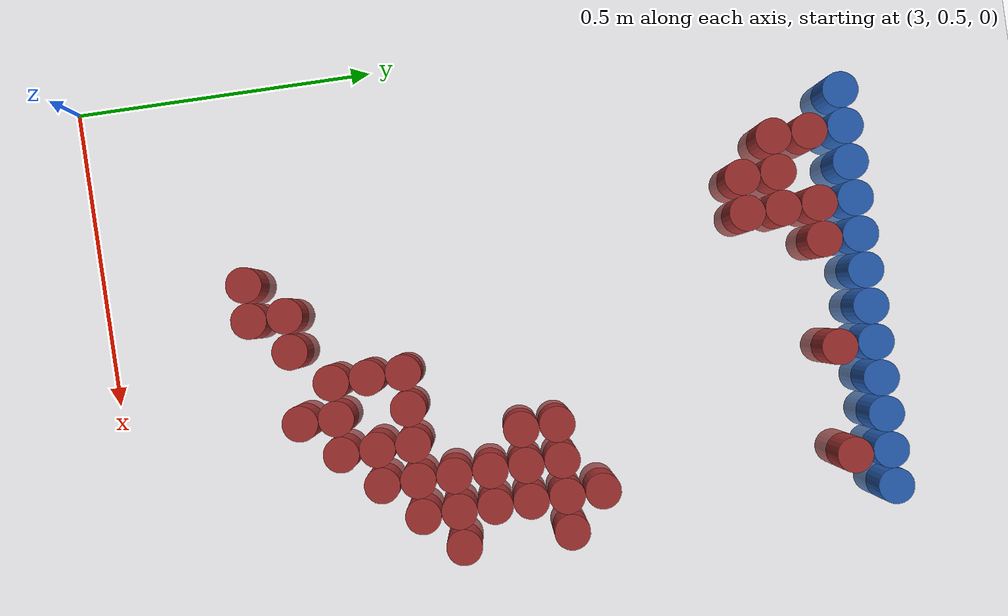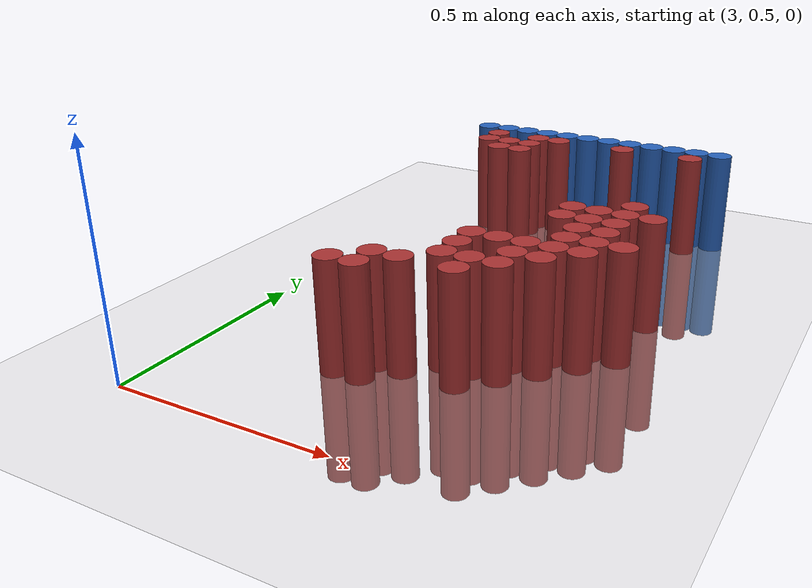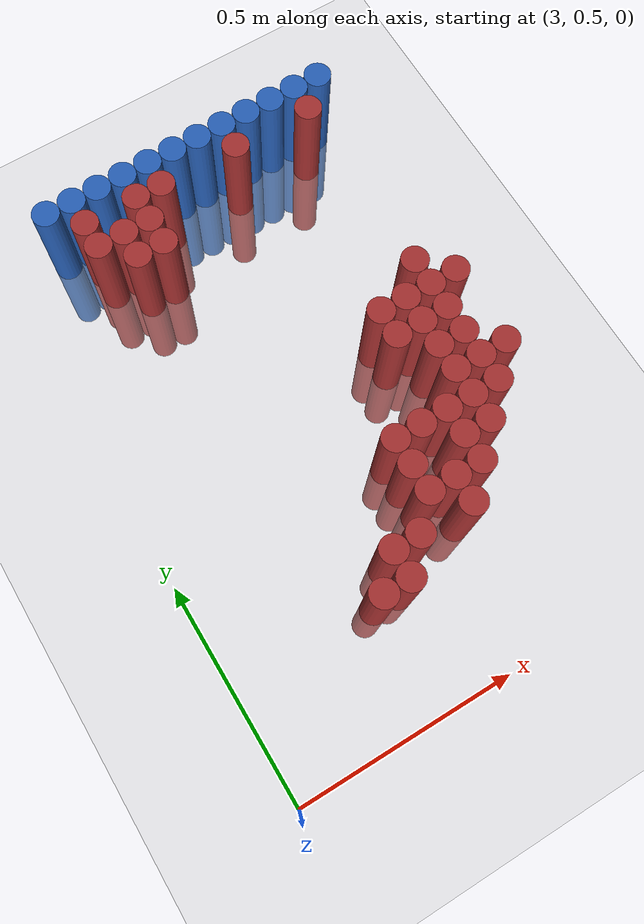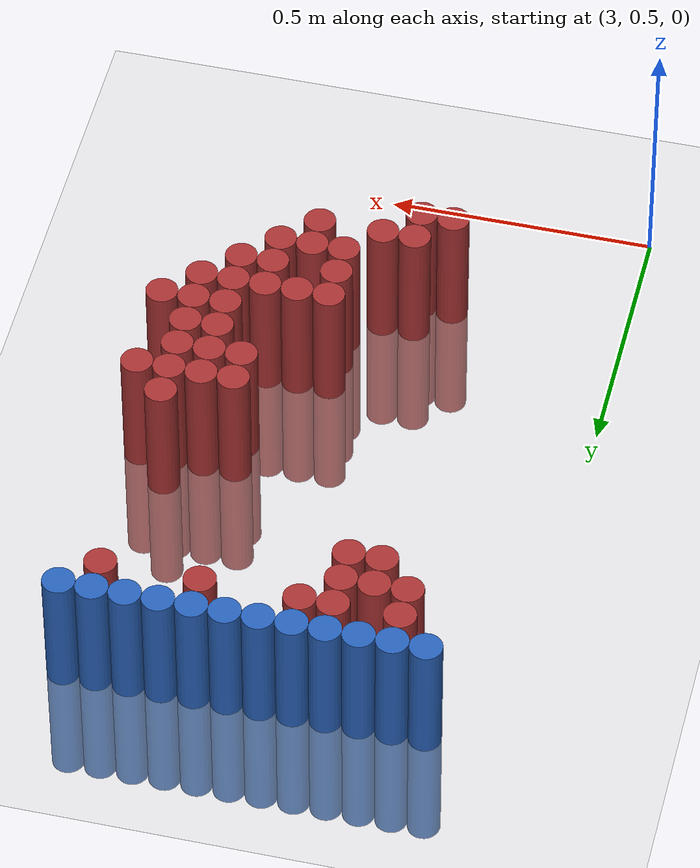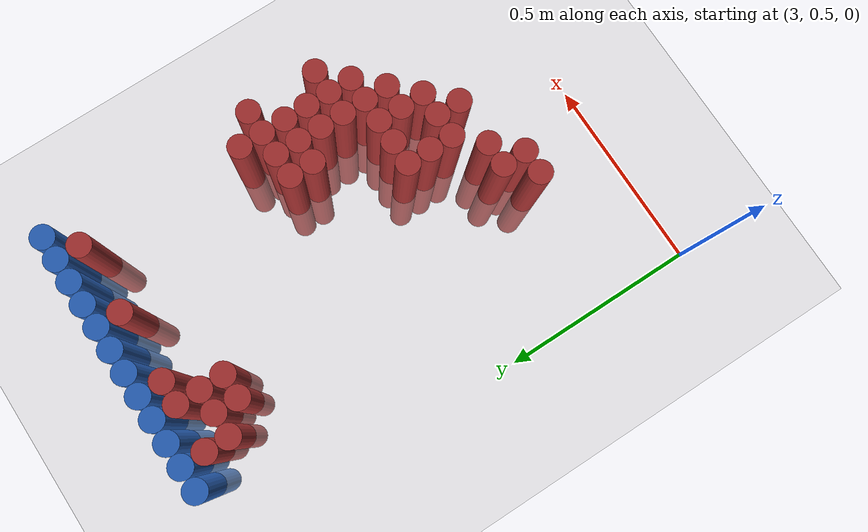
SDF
<sdf version="1.6">
 <world name="default">
  <model name="ground_plane">
   <static>1</static>
   <link name="link">
    <collision name="collision">
     <geometry><plane><normal>0 0 1</normal><size>100 100</size></plane></geometry>
     <surface><friction><ode><mu>100</mu><mu2>50</mu2></ode></friction></surface>
    </collision>
    <visual name="visual">
     <cast_shadows>0</cast_shadows>
     <geometry><plane><normal>0 0 1</normal><size>100 100</size></plane></geometry>
     <material>
      <script><uri>file://media/materials/scripts/gazebo.material</uri><name>Gazebo/Grey</name></script>
     </material>
    </visual>
   </link>
  </model>
  <model name="unit_cylinder_113">
   <static>1</static>
   <pose>3.150000 1.770000 0.000000 0.000000 0.000000 0.000000</pose>
   <link name="link">
    <inertial>
     <mass>1</mass>
     <inertia><ixx>0.145833</ixx><ixy>0</ixy><ixz>0</ixz><iyy>0.145833</iyy><iyz>0</iyz><izz>0.125</izz></inertia>
    </inertial>
    <collision name="collision">
     <geometry><cylinder><radius>0.030000</radius><length>0.5</length></cylinder></geometry>
    </collision>
    <visual name="visual">
     <geometry><cylinder><radius>0.030000</radius><length>0.5</length></cylinder></geometry>
     <material>
      <ambient>0.152000 0.379000 0.720000 1</ambient>
      <diffuse>0.152000 0.379000 0.720000 1</diffuse>
     </material>
     <material>
      <script><name>Gazebo/Grey</name><uri>file://media/materials/scripts/gazebo.material</uri></script>
     </material>
    </visual>
   </link>
  </model>
  <model name="unit_cylinder_114">
   <static>1</static>
   <pose>3.210000 1.770000 0.000000 0.000000 0.000000 0.000000</pose>
   <link name="link">
    <inertial>
     <mass>1</mass>
     <inertia><ixx>0.145833</ixx><ixy>0</ixy><ixz>0</ixz><iyy>0.145833</iyy><iyz>0</iyz><izz>0.125</izz></inertia>
    </inertial>
    <collision name="collision">
     <geometry><cylinder><radius>0.030000</radius><length>0.5</length></cylinder></geometry>
    </collision>
    <visual name="visual">
     <geometry><cylinder><radius>0.030000</radius><length>0.5</length></cylinder></geometry>
     <material>
      <ambient>0.152000 0.379000 0.720000 1</ambient>
      <diffuse>0.152000 0.379000 0.720000 1</diffuse>
     </material>
     <material>
      <script><name>Gazebo/Grey</name><uri>file://media/materials/scripts/gazebo.material</uri></script>
     </material>
    </visual>
   </link>
  </model>
  <model name="unit_cylinder_115">
   <static>1</static>
   <pose>3.270000 1.770000 0.000000 0.000000 0.000000 0.000000</pose>
   <link name="link">
    <inertial>
     <mass>1</mass>
     <inertia><ixx>0.145833</ixx><ixy>0</ixy><ixz>0</ixz><iyy>0.145833</iyy><iyz>0</iyz><izz>0.125</izz></inertia>
    </inertial>
    <collision name="collision">
     <geometry><cylinder><radius>0.030000</radius><length>0.5</length></cylinder></geometry>
    </collision>
    <visual name="visual">
     <geometry><cylinder><radius>0.030000</radius><length>0.5</length></cylinder></geometry>
     <material>
      <ambient>0.152000 0.379000 0.720000 1</ambient>
      <diffuse>0.152000 0.379000 0.720000 1</diffuse>
     </material>
     <material>
      <script><name>Gazebo/Grey</name><uri>file://media/materials/scripts/gazebo.material</uri></script>
     </material>
    </visual>
   </link>
  </model>
  <model name="unit_cylinder_116">
   <static>1</static>
   <pose>3.330000 1.770000 0.000000 0.000000 0.000000 0.000000</pose>
   <link name="link">
    <inertial>
     <mass>1</mass>
     <inertia><ixx>0.145833</ixx><ixy>0</ixy><ixz>0</ixz><iyy>0.145833</iyy><iyz>0</iyz><izz>0.125</izz></inertia>
    </inertial>
    <collision name="collision">
     <geometry><cylinder><radius>0.030000</radius><length>0.5</length></cylinder></geometry>
    </collision>
    <visual name="visual">
     <geometry><cylinder><radius>0.030000</radius><length>0.5</length></cylinder></geometry>
     <material>
      <ambient>0.152000 0.379000 0.720000 1</ambient>
      <diffuse>0.152000 0.379000 0.720000 1</diffuse>
     </material>
     <material>
      <script><name>Gazebo/Grey</name><uri>file://media/materials/scripts/gazebo.material</uri></script>
     </material>
    </visual>
   </link>
  </model>
  <model name="unit_cylinder_117">
   <static>1</static>
   <pose>3.390000 1.770000 0.000000 0.000000 0.000000 0.000000</pose>
   <link name="link">
    <inertial>
     <mass>1</mass>
     <inertia><ixx>0.145833</ixx><ixy>0</ixy><ixz>0</ixz><iyy>0.145833</iyy><iyz>0</iyz><izz>0.125</izz></inertia>
    </inertial>
    <collision name="collision">
     <geometry><cylinder><radius>0.030000</radius><length>0.5</length></cylinder></geometry>
    </collision>
    <visual name="visual">
     <geometry><cylinder><radius>0.030000</radius><length>0.5</length></cylinder></geometry>
     <material>
      <ambient>0.152000 0.379000 0.720000 1</ambient>
      <diffuse>0.152000 0.379000 0.720000 1</diffuse>
     </material>
     <material>
      <script><name>Gazebo/Grey</name><uri>file://media/materials/scripts/gazebo.material</uri></script>
     </material>
    </visual>
   </link>
  </model>
  <model name="unit_cylinder_118">
   <static>1</static>
   <pose>3.450000 1.770000 0.000000 0.000000 0.000000 0.000000</pose>
   <link name="link">
    <inertial>
     <mass>1</mass>
     <inertia><ixx>0.145833</ixx><ixy>0</ixy><ixz>0</ixz><iyy>0.145833</iyy><iyz>0</iyz><izz>0.125</izz></inertia>
    </inertial>
    <collision name="collision">
     <geometry><cylinder><radius>0.030000</radius><length>0.5</length></cylinder></geometry>
    </collision>
    <visual name="visual">
     <geometry><cylinder><radius>0.030000</radius><length>0.5</length></cylinder></geometry>
     <material>
      <ambient>0.152000 0.379000 0.720000 1</ambient>
      <diffuse>0.152000 0.379000 0.720000 1</diffuse>
     </material>
     <material>
      <script><name>Gazebo/Grey</name><uri>file://media/materials/scripts/gazebo.material</uri></script>
     </material>
    </visual>
   </link>
  </model>
  <model name="unit_cylinder_119">
   <static>1</static>
   <pose>3.510000 1.770000 0.000000 0.000000 0.000000 0.000000</pose>
   <link name="link">
    <inertial>
     <mass>1</mass>
     <inertia><ixx>0.145833</ixx><ixy>0</ixy><ixz>0</ixz><iyy>0.145833</iyy><iyz>0</iyz><izz>0.125</izz></inertia>
    </inertial>
    <collision name="collision">
     <geometry><cylinder><radius>0.030000</radius><length>0.5</length></cylinder></geometry>
    </collision>
    <visual name="visual">
     <geometry><cylinder><radius>0.030000</radius><length>0.5</length></cylinder></geometry>
     <material>
      <ambient>0.152000 0.379000 0.720000 1</ambient>
      <diffuse>0.152000 0.379000 0.720000 1</diffuse>
     </material>
     <material>
      <script><name>Gazebo/Grey</name><uri>file://media/materials/scripts/gazebo.material</uri></script>
     </material>
    </visual>
   </link>
  </model>
  <model name="unit_cylinder_120">
   <static>1</static>
   <pose>3.570000 1.770000 0.000000 0.000000 0.000000 0.000000</pose>
   <link name="link">
    <inertial>
     <mass>1</mass>
     <inertia><ixx>0.145833</ixx><ixy>0</ixy><ixz>0</ixz><iyy>0.145833</iyy><iyz>0</iyz><izz>0.125</izz></inertia>
    </inertial>
    <collision name="collision">
     <geometry><cylinder><radius>0.030000</radius><length>0.5</length></cylinder></geometry>
    </collision>
    <visual name="visual">
     <geometry><cylinder><radius>0.030000</radius><length>0.5</length></cylinder></geometry>
     <material>
      <ambient>0.152000 0.379000 0.720000 1</ambient>
      <diffuse>0.152000 0.379000 0.720000 1</diffuse>
     </material>
     <material>
      <script><name>Gazebo/Grey</name><uri>file://media/materials/scripts/gazebo.material</uri></script>
     </material>
    </visual>
   </link>
  </model>
  <model name="unit_cylinder_121">
   <static>1</static>
   <pose>3.630000 1.770000 0.000000 0.000000 0.000000 0.000000</pose>
   <link name="link">
    <inertial>
     <mass>1</mass>
     <inertia><ixx>0.145833</ixx><ixy>0</ixy><ixz>0</ixz><iyy>0.145833</iyy><iyz>0</iyz><izz>0.125</izz></inertia>
    </inertial>
    <collision name="collision">
     <geometry><cylinder><radius>0.030000</radius><length>0.5</length></cylinder></geometry>
    </collision>
    <visual name="visual">
     <geometry><cylinder><radius>0.030000</radius><length>0.5</length></cylinder></geometry>
     <material>
      <ambient>0.152000 0.379000 0.720000 1</ambient>
      <diffuse>0.152000 0.379000 0.720000 1</diffuse>
     </material>
     <material>
      <script><name>Gazebo/Grey</name><uri>file://media/materials/scripts/gazebo.material</uri></script>
     </material>
    </visual>
   </link>
  </model>
  <model name="unit_cylinder_122">
   <static>1</static>
   <pose>3.690000 1.770000 0.000000 0.000000 0.000000 0.000000</pose>
   <link name="link">
    <inertial>
     <mass>1</mass>
     <inertia><ixx>0.145833</ixx><ixy>0</ixy><ixz>0</ixz><iyy>0.145833</iyy><iyz>0</iyz><izz>0.125</izz></inertia>
    </inertial>
    <collision name="collision">
     <geometry><cylinder><radius>0.030000</radius><length>0.5</length></cylinder></geometry>
    </collision>
    <visual name="visual">
     <geometry><cylinder><radius>0.030000</radius><length>0.5</length></cylinder></geometry>
     <material>
      <ambient>0.152000 0.379000 0.720000 1</ambient>
      <diffuse>0.152000 0.379000 0.720000 1</diffuse>
     </material>
     <material>
      <script><name>Gazebo/Grey</name><uri>file://media/materials/scripts/gazebo.material</uri></script>
     </material>
    </visual>
   </link>
  </model>
  <model name="unit_cylinder_123">
   <static>1</static>
   <pose>3.750000 1.770000 0.000000 0.000000 0.000000 0.000000</pose>
   <link name="link">
    <inertial>
     <mass>1</mass>
     <inertia><ixx>0.145833</ixx><ixy>0</ixy><ixz>0</ixz><iyy>0.145833</iyy><iyz>0</iyz><izz>0.125</izz></inertia>
    </inertial>
    <collision name="collision">
     <geometry><cylinder><radius>0.030000</radius><length>0.5</length></cylinder></geometry>
    </collision>
    <visual name="visual">
     <geometry><cylinder><radius>0.030000</radius><length>0.5</length></cylinder></geometry>
     <material>
      <ambient>0.152000 0.379000 0.720000 1</ambient>
      <diffuse>0.152000 0.379000 0.720000 1</diffuse>
     </material>
     <material>
      <script><name>Gazebo/Grey</name><uri>file://media/materials/scripts/gazebo.material</uri></script>
     </material>
    </visual>
   </link>
  </model>
  <model name="unit_cylinder_124">
   <static>1</static>
   <pose>3.810000 1.770000 0.000000 0.000000 0.000000 0.000000</pose>
   <link name="link">
    <inertial>
     <mass>1</mass>
     <inertia><ixx>0.145833</ixx><ixy>0</ixy><ixz>0</ixz><iyy>0.145833</iyy><iyz>0</iyz><izz>0.125</izz></inertia>
    </inertial>
    <collision name="collision">
     <geometry><cylinder><radius>0.030000</radius><length>0.5</length></cylinder></geometry>
    </collision>
    <visual name="visual">
     <geometry><cylinder><radius>0.030000</radius><length>0.5</length></cylinder></geometry>
     <material>
      <ambient>0.152000 0.379000 0.720000 1</ambient>
      <diffuse>0.152000 0.379000 0.720000 1</diffuse>
     </material>
     <material>
      <script><name>Gazebo/Grey</name><uri>file://media/materials/scripts/gazebo.material</uri></script>
     </material>
    </visual>
   </link>
  </model>
  <model name="unit_cylinder_133">
   <static>1</static>
   <pose>3.210000 1.710000 0.000000 0.000000 0.000000 0.000000</pose>
   <link name="link">
    <inertial>
     <mass>1</mass>
     <inertia><ixx>0.145833</ixx><ixy>0</ixy><ixz>0</ixz><iyy>0.145833</iyy><iyz>0</iyz><izz>0.125</izz></inertia>
    </inertial>
    <collision name="collision">
     <geometry><cylinder><radius>0.030000</radius><length>0.5</length></cylinder></geometry>
    </collision>
    <visual name="visual">
     <geometry><cylinder><radius>0.030000</radius><length>0.5</length></cylinder></geometry>
     <material>
      <ambient>0.648000 0.192000 0.192000 1</ambient>
      <diffuse>0.648000 0.192000 0.192000 1</diffuse>
     </material>
     <material>
      <script><name>Gazebo/Grey</name><uri>file://media/materials/scripts/gazebo.material</uri></script>
     </material>
    </visual>
   </link>
  </model>
  <model name="unit_cylinder_134">
   <static>1</static>
   <pose>3.330000 1.710000 0.000000 0.000000 0.000000 0.000000</pose>
   <link name="link">
    <inertial>
     <mass>1</mass>
     <inertia><ixx>0.145833</ixx><ixy>0</ixy><ixz>0</ixz><iyy>0.145833</iyy><iyz>0</iyz><izz>0.125</izz></inertia>
    </inertial>
    <collision name="collision">
     <geometry><cylinder><radius>0.030000</radius><length>0.5</length></cylinder></geometry>
    </collision>
    <visual name="visual">
     <geometry><cylinder><radius>0.030000</radius><length>0.5</length></cylinder></geometry>
     <material>
      <ambient>0.648000 0.192000 0.192000 1</ambient>
      <diffuse>0.648000 0.192000 0.192000 1</diffuse>
     </material>
     <material>
      <script><name>Gazebo/Grey</name><uri>file://media/materials/scripts/gazebo.material</uri></script>
     </material>
    </visual>
   </link>
  </model>
  <model name="unit_cylinder_135">
   <static>1</static>
   <pose>3.390000 1.710000 0.000000 0.000000 0.000000 0.000000</pose>
   <link name="link">
    <inertial>
     <mass>1</mass>
     <inertia><ixx>0.145833</ixx><ixy>0</ixy><ixz>0</ixz><iyy>0.145833</iyy><iyz>0</iyz><izz>0.125</izz></inertia>
    </inertial>
    <collision name="collision">
     <geometry><cylinder><radius>0.030000</radius><length>0.5</length></cylinder></geometry>
    </collision>
    <visual name="visual">
     <geometry><cylinder><radius>0.030000</radius><length>0.5</length></cylinder></geometry>
     <material>
      <ambient>0.648000 0.192000 0.192000 1</ambient>
      <diffuse>0.648000 0.192000 0.192000 1</diffuse>
     </material>
     <material>
      <script><name>Gazebo/Grey</name><uri>file://media/materials/scripts/gazebo.material</uri></script>
     </material>
    </visual>
   </link>
  </model>
  <model name="unit_cylinder_136">
   <static>1</static>
   <pose>3.570000 1.710000 0.000000 0.000000 0.000000 0.000000</pose>
   <link name="link">
    <inertial>
     <mass>1</mass>
     <inertia><ixx>0.145833</ixx><ixy>0</ixy><ixz>0</ixz><iyy>0.145833</iyy><iyz>0</iyz><izz>0.125</izz></inertia>
    </inertial>
    <collision name="collision">
     <geometry><cylinder><radius>0.030000</radius><length>0.5</length></cylinder></geometry>
    </collision>
    <visual name="visual">
     <geometry><cylinder><radius>0.030000</radius><length>0.5</length></cylinder></geometry>
     <material>
      <ambient>0.648000 0.192000 0.192000 1</ambient>
      <diffuse>0.648000 0.192000 0.192000 1</diffuse>
     </material>
     <material>
      <script><name>Gazebo/Grey</name><uri>file://media/materials/scripts/gazebo.material</uri></script>
     </material>
    </visual>
   </link>
  </model>
  <model name="unit_cylinder_137">
   <static>1</static>
   <pose>3.750000 1.710000 0.000000 0.000000 0.000000 0.000000</pose>
   <link name="link">
    <inertial>
     <mass>1</mass>
     <inertia><ixx>0.145833</ixx><ixy>0</ixy><ixz>0</ixz><iyy>0.145833</iyy><iyz>0</iyz><izz>0.125</izz></inertia>
    </inertial>
    <collision name="collision">
     <geometry><cylinder><radius>0.030000</radius><length>0.5</length></cylinder></geometry>
    </collision>
    <visual name="visual">
     <geometry><cylinder><radius>0.030000</radius><length>0.5</length></cylinder></geometry>
     <material>
      <ambient>0.648000 0.192000 0.192000 1</ambient>
      <diffuse>0.648000 0.192000 0.192000 1</diffuse>
     </material>
     <material>
      <script><name>Gazebo/Grey</name><uri>file://media/materials/scripts/gazebo.material</uri></script>
     </material>
    </visual>
   </link>
  </model>
  <model name="unit_cylinder_141">
   <static>1</static>
   <pose>3.210000 1.650000 0.000000 0.000000 0.000000 0.000000</pose>
   <link name="link">
    <inertial>
     <mass>1</mass>
     <inertia><ixx>0.145833</ixx><ixy>0</ixy><ixz>0</ixz><iyy>0.145833</iyy><iyz>0</iyz><izz>0.125</izz></inertia>
    </inertial>
    <collision name="collision">
     <geometry><cylinder><radius>0.030000</radius><length>0.5</length></cylinder></geometry>
    </collision>
    <visual name="visual">
     <geometry><cylinder><radius>0.030000</radius><length>0.5</length></cylinder></geometry>
     <material>
      <ambient>0.648000 0.192000 0.192000 1</ambient>
      <diffuse>0.648000 0.192000 0.192000 1</diffuse>
     </material>
     <material>
      <script><name>Gazebo/Grey</name><uri>file://media/materials/scripts/gazebo.material</uri></script>
     </material>
    </visual>
   </link>
  </model>
  <model name="unit_cylinder_142">
   <static>1</static>
   <pose>3.270000 1.650000 0.000000 0.000000 0.000000 0.000000</pose>
   <link name="link">
    <inertial>
     <mass>1</mass>
     <inertia><ixx>0.145833</ixx><ixy>0</ixy><ixz>0</ixz><iyy>0.145833</iyy><iyz>0</iyz><izz>0.125</izz></inertia>
    </inertial>
    <collision name="collision">
     <geometry><cylinder><radius>0.030000</radius><length>0.5</length></cylinder></geometry>
    </collision>
    <visual name="visual">
     <geometry><cylinder><radius>0.030000</radius><length>0.5</length></cylinder></geometry>
     <material>
      <ambient>0.648000 0.192000 0.192000 1</ambient>
      <diffuse>0.648000 0.192000 0.192000 1</diffuse>
     </material>
     <material>
      <script><name>Gazebo/Grey</name><uri>file://media/materials/scripts/gazebo.material</uri></script>
     </material>
    </visual>
   </link>
  </model>
  <model name="unit_cylinder_143">
   <static>1</static>
   <pose>3.330000 1.650000 0.000000 0.000000 0.000000 0.000000</pose>
   <link name="link">
    <inertial>
     <mass>1</mass>
     <inertia><ixx>0.145833</ixx><ixy>0</ixy><ixz>0</ixz><iyy>0.145833</iyy><iyz>0</iyz><izz>0.125</izz></inertia>
    </inertial>
    <collision name="collision">
     <geometry><cylinder><radius>0.030000</radius><length>0.5</length></cylinder></geometry>
    </collision>
    <visual name="visual">
     <geometry><cylinder><radius>0.030000</radius><length>0.5</length></cylinder></geometry>
     <material>
      <ambient>0.648000 0.192000 0.192000 1</ambient>
      <diffuse>0.648000 0.192000 0.192000 1</diffuse>
     </material>
     <material>
      <script><name>Gazebo/Grey</name><uri>file://media/materials/scripts/gazebo.material</uri></script>
     </material>
    </visual>
   </link>
  </model>
  <model name="unit_cylinder_145">
   <static>1</static>
   <pose>3.270000 1.590000 0.000000 0.000000 0.000000 0.000000</pose>
   <link name="link">
    <inertial>
     <mass>1</mass>
     <inertia><ixx>0.145833</ixx><ixy>0</ixy><ixz>0</ixz><iyy>0.145833</iyy><iyz>0</iyz><izz>0.125</izz></inertia>
    </inertial>
    <collision name="collision">
     <geometry><cylinder><radius>0.030000</radius><length>0.5</length></cylinder></geometry>
    </collision>
    <visual name="visual">
     <geometry><cylinder><radius>0.030000</radius><length>0.5</length></cylinder></geometry>
     <material>
      <ambient>0.648000 0.192000 0.192000 1</ambient>
      <diffuse>0.648000 0.192000 0.192000 1</diffuse>
     </material>
     <material>
      <script><name>Gazebo/Grey</name><uri>file://media/materials/scripts/gazebo.material</uri></script>
     </material>
    </visual>
   </link>
  </model>
  <model name="unit_cylinder_146">
   <static>1</static>
   <pose>3.330000 1.590000 0.000000 0.000000 0.000000 0.000000</pose>
   <link name="link">
    <inertial>
     <mass>1</mass>
     <inertia><ixx>0.145833</ixx><ixy>0</ixy><ixz>0</ixz><iyy>0.145833</iyy><iyz>0</iyz><izz>0.125</izz></inertia>
    </inertial>
    <collision name="collision">
     <geometry><cylinder><radius>0.030000</radius><length>0.5</length></cylinder></geometry>
    </collision>
    <visual name="visual">
     <geometry><cylinder><radius>0.030000</radius><length>0.5</length></cylinder></geometry>
     <material>
      <ambient>0.648000 0.192000 0.192000 1</ambient>
      <diffuse>0.648000 0.192000 0.192000 1</diffuse>
     </material>
     <material>
      <script><name>Gazebo/Grey</name><uri>file://media/materials/scripts/gazebo.material</uri></script>
     </material>
    </visual>
   </link>
  </model>
  <model name="unit_cylinder_155">
   <static>1</static>
   <pose>3.750000 1.290000 0.000000 0.000000 0.000000 0.000000</pose>
   <link name="link">
    <inertial>
     <mass>1</mass>
     <inertia><ixx>0.145833</ixx><ixy>0</ixy><ixz>0</ixz><iyy>0.145833</iyy><iyz>0</iyz><izz>0.125</izz></inertia>
    </inertial>
    <collision name="collision">
     <geometry><cylinder><radius>0.030000</radius><length>0.5</length></cylinder></geometry>
    </collision>
    <visual name="visual">
     <geometry><cylinder><radius>0.030000</radius><length>0.5</length></cylinder></geometry>
     <material>
      <ambient>0.648000 0.192000 0.192000 1</ambient>
      <diffuse>0.648000 0.192000 0.192000 1</diffuse>
     </material>
     <material>
      <script><name>Gazebo/Grey</name><uri>file://media/materials/scripts/gazebo.material</uri></script>
     </material>
    </visual>
   </link>
  </model>
  <model name="unit_cylinder_159">
   <static>1</static>
   <pose>3.630000 1.230000 0.000000 0.000000 0.000000 0.000000</pose>
   <link name="link">
    <inertial>
     <mass>1</mass>
     <inertia><ixx>0.145833</ixx><ixy>0</ixy><ixz>0</ixz><iyy>0.145833</iyy><iyz>0</iyz><izz>0.125</izz></inertia>
    </inertial>
    <collision name="collision">
     <geometry><cylinder><radius>0.030000</radius><length>0.5</length></cylinder></geometry>
    </collision>
    <visual name="visual">
     <geometry><cylinder><radius>0.030000</radius><length>0.5</length></cylinder></geometry>
     <material>
      <ambient>0.648000 0.192000 0.192000 1</ambient>
      <diffuse>0.648000 0.192000 0.192000 1</diffuse>
     </material>
     <material>
      <script><name>Gazebo/Grey</name><uri>file://media/materials/scripts/gazebo.material</uri></script>
     </material>
    </visual>
   </link>
  </model>
  <model name="unit_cylinder_160">
   <static>1</static>
   <pose>3.690000 1.230000 0.000000 0.000000 0.000000 0.000000</pose>
   <link name="link">
    <inertial>
     <mass>1</mass>
     <inertia><ixx>0.145833</ixx><ixy>0</ixy><ixz>0</ixz><iyy>0.145833</iyy><iyz>0</iyz><izz>0.125</izz></inertia>
    </inertial>
    <collision name="collision">
     <geometry><cylinder><radius>0.030000</radius><length>0.5</length></cylinder></geometry>
    </collision>
    <visual name="visual">
     <geometry><cylinder><radius>0.030000</radius><length>0.5</length></cylinder></geometry>
     <material>
      <ambient>0.648000 0.192000 0.192000 1</ambient>
      <diffuse>0.648000 0.192000 0.192000 1</diffuse>
     </material>
     <material>
      <script><name>Gazebo/Grey</name><uri>file://media/materials/scripts/gazebo.material</uri></script>
     </material>
    </visual>
   </link>
  </model>
  <model name="unit_cylinder_161">
   <static>1</static>
   <pose>3.750000 1.230000 0.000000 0.000000 0.000000 0.000000</pose>
   <link name="link">
    <inertial>
     <mass>1</mass>
     <inertia><ixx>0.145833</ixx><ixy>0</ixy><ixz>0</ixz><iyy>0.145833</iyy><iyz>0</iyz><izz>0.125</izz></inertia>
    </inertial>
    <collision name="collision">
     <geometry><cylinder><radius>0.030000</radius><length>0.5</length></cylinder></geometry>
    </collision>
    <visual name="visual">
     <geometry><cylinder><radius>0.030000</radius><length>0.5</length></cylinder></geometry>
     <material>
      <ambient>0.648000 0.192000 0.192000 1</ambient>
      <diffuse>0.648000 0.192000 0.192000 1</diffuse>
     </material>
     <material>
      <script><name>Gazebo/Grey</name><uri>file://media/materials/scripts/gazebo.material</uri></script>
     </material>
    </visual>
   </link>
  </model>
  <model name="unit_cylinder_162">
   <static>1</static>
   <pose>3.810000 1.230000 0.000000 0.000000 0.000000 0.000000</pose>
   <link name="link">
    <inertial>
     <mass>1</mass>
     <inertia><ixx>0.145833</ixx><ixy>0</ixy><ixz>0</ixz><iyy>0.145833</iyy><iyz>0</iyz><izz>0.125</izz></inertia>
    </inertial>
    <collision name="collision">
     <geometry><cylinder><radius>0.030000</radius><length>0.5</length></cylinder></geometry>
    </collision>
    <visual name="visual">
     <geometry><cylinder><radius>0.030000</radius><length>0.5</length></cylinder></geometry>
     <material>
      <ambient>0.648000 0.192000 0.192000 1</ambient>
      <diffuse>0.648000 0.192000 0.192000 1</diffuse>
     </material>
     <material>
      <script><name>Gazebo/Grey</name><uri>file://media/materials/scripts/gazebo.material</uri></script>
     </material>
    </visual>
   </link>
  </model>
  <model name="unit_cylinder_166">
   <static>1</static>
   <pose>3.630000 1.170000 0.000000 0.000000 0.000000 0.000000</pose>
   <link name="link">
    <inertial>
     <mass>1</mass>
     <inertia><ixx>0.145833</ixx><ixy>0</ixy><ixz>0</ixz><iyy>0.145833</iyy><iyz>0</iyz><izz>0.125</izz></inertia>
    </inertial>
    <collision name="collision">
     <geometry><cylinder><radius>0.030000</radius><length>0.5</length></cylinder></geometry>
    </collision>
    <visual name="visual">
     <geometry><cylinder><radius>0.030000</radius><length>0.5</length></cylinder></geometry>
     <material>
      <ambient>0.648000 0.192000 0.192000 1</ambient>
      <diffuse>0.648000 0.192000 0.192000 1</diffuse>
     </material>
     <material>
      <script><name>Gazebo/Grey</name><uri>file://media/materials/scripts/gazebo.material</uri></script>
     </material>
    </visual>
   </link>
  </model>
  <model name="unit_cylinder_167">
   <static>1</static>
   <pose>3.690000 1.170000 0.000000 0.000000 0.000000 0.000000</pose>
   <link name="link">
    <inertial>
     <mass>1</mass>
     <inertia><ixx>0.145833</ixx><ixy>0</ixy><ixz>0</ixz><iyy>0.145833</iyy><iyz>0</iyz><izz>0.125</izz></inertia>
    </inertial>
    <collision name="collision">
     <geometry><cylinder><radius>0.030000</radius><length>0.5</length></cylinder></geometry>
    </collision>
    <visual name="visual">
     <geometry><cylinder><radius>0.030000</radius><length>0.5</length></cylinder></geometry>
     <material>
      <ambient>0.648000 0.192000 0.192000 1</ambient>
      <diffuse>0.648000 0.192000 0.192000 1</diffuse>
     </material>
     <material>
      <script><name>Gazebo/Grey</name><uri>file://media/materials/scripts/gazebo.material</uri></script>
     </material>
    </visual>
   </link>
  </model>
  <model name="unit_cylinder_168">
   <static>1</static>
   <pose>3.750000 1.170000 0.000000 0.000000 0.000000 0.000000</pose>
   <link name="link">
    <inertial>
     <mass>1</mass>
     <inertia><ixx>0.145833</ixx><ixy>0</ixy><ixz>0</ixz><iyy>0.145833</iyy><iyz>0</iyz><izz>0.125</izz></inertia>
    </inertial>
    <collision name="collision">
     <geometry><cylinder><radius>0.030000</radius><length>0.5</length></cylinder></geometry>
    </collision>
    <visual name="visual">
     <geometry><cylinder><radius>0.030000</radius><length>0.5</length></cylinder></geometry>
     <material>
      <ambient>0.648000 0.192000 0.192000 1</ambient>
      <diffuse>0.648000 0.192000 0.192000 1</diffuse>
     </material>
     <material>
      <script><name>Gazebo/Grey</name><uri>file://media/materials/scripts/gazebo.material</uri></script>
     </material>
    </visual>
   </link>
  </model>
  <model name="unit_cylinder_173">
   <static>1</static>
   <pose>3.690000 1.110000 0.000000 0.000000 0.000000 0.000000</pose>
   <link name="link">
    <inertial>
     <mass>1</mass>
     <inertia><ixx>0.145833</ixx><ixy>0</ixy><ixz>0</ixz><iyy>0.145833</iyy><iyz>0</iyz><izz>0.125</izz></inertia>
    </inertial>
    <collision name="collision">
     <geometry><cylinder><radius>0.030000</radius><length>0.5</length></cylinder></geometry>
    </collision>
    <visual name="visual">
     <geometry><cylinder><radius>0.030000</radius><length>0.5</length></cylinder></geometry>
     <material>
      <ambient>0.648000 0.192000 0.192000 1</ambient>
      <diffuse>0.648000 0.192000 0.192000 1</diffuse>
     </material>
     <material>
      <script><name>Gazebo/Grey</name><uri>file://media/materials/scripts/gazebo.material</uri></script>
     </material>
    </visual>
   </link>
  </model>
  <model name="unit_cylinder_174">
   <static>1</static>
   <pose>3.750000 1.110000 0.000000 0.000000 0.000000 0.000000</pose>
   <link name="link">
    <inertial>
     <mass>1</mass>
     <inertia><ixx>0.145833</ixx><ixy>0</ixy><ixz>0</ixz><iyy>0.145833</iyy><iyz>0</iyz><izz>0.125</izz></inertia>
    </inertial>
    <collision name="collision">
     <geometry><cylinder><radius>0.030000</radius><length>0.5</length></cylinder></geometry>
    </collision>
    <visual name="visual">
     <geometry><cylinder><radius>0.030000</radius><length>0.5</length></cylinder></geometry>
     <material>
      <ambient>0.648000 0.192000 0.192000 1</ambient>
      <diffuse>0.648000 0.192000 0.192000 1</diffuse>
     </material>
     <material>
      <script><name>Gazebo/Grey</name><uri>file://media/materials/scripts/gazebo.material</uri></script>
     </material>
    </visual>
   </link>
  </model>
  <model name="unit_cylinder_177">
   <static>1</static>
   <pose>3.690000 1.050000 0.000000 0.000000 0.000000 0.000000</pose>
   <link name="link">
    <inertial>
     <mass>1</mass>
     <inertia><ixx>0.145833</ixx><ixy>0</ixy><ixz>0</ixz><iyy>0.145833</iyy><iyz>0</iyz><izz>0.125</izz></inertia>
    </inertial>
    <collision name="collision">
     <geometry><cylinder><radius>0.030000</radius><length>0.5</length></cylinder></geometry>
    </collision>
    <visual name="visual">
     <geometry><cylinder><radius>0.030000</radius><length>0.5</length></cylinder></geometry>
     <material>
      <ambient>0.648000 0.192000 0.192000 1</ambient>
      <diffuse>0.648000 0.192000 0.192000 1</diffuse>
     </material>
     <material>
      <script><name>Gazebo/Grey</name><uri>file://media/materials/scripts/gazebo.material</uri></script>
     </material>
    </visual>
   </link>
  </model>
  <model name="unit_cylinder_178">
   <static>1</static>
   <pose>3.750000 1.050000 0.000000 0.000000 0.000000 0.000000</pose>
   <link name="link">
    <inertial>
     <mass>1</mass>
     <inertia><ixx>0.145833</ixx><ixy>0</ixy><ixz>0</ixz><iyy>0.145833</iyy><iyz>0</iyz><izz>0.125</izz></inertia>
    </inertial>
    <collision name="collision">
     <geometry><cylinder><radius>0.030000</radius><length>0.5</length></cylinder></geometry>
    </collision>
    <visual name="visual">
     <geometry><cylinder><radius>0.030000</radius><length>0.5</length></cylinder></geometry>
     <material>
      <ambient>0.648000 0.192000 0.192000 1</ambient>
      <diffuse>0.648000 0.192000 0.192000 1</diffuse>
     </material>
     <material>
      <script><name>Gazebo/Grey</name><uri>file://media/materials/scripts/gazebo.material</uri></script>
     </material>
    </visual>
   </link>
  </model>
  <model name="unit_cylinder_179">
   <static>1</static>
   <pose>3.810000 1.050000 0.000000 0.000000 0.000000 0.000000</pose>
   <link name="link">
    <inertial>
     <mass>1</mass>
     <inertia><ixx>0.145833</ixx><ixy>0</ixy><ixz>0</ixz><iyy>0.145833</iyy><iyz>0</iyz><izz>0.125</izz></inertia>
    </inertial>
    <collision name="collision">
     <geometry><cylinder><radius>0.030000</radius><length>0.5</length></cylinder></geometry>
    </collision>
    <visual name="visual">
     <geometry><cylinder><radius>0.030000</radius><length>0.5</length></cylinder></geometry>
     <material>
      <ambient>0.648000 0.192000 0.192000 1</ambient>
      <diffuse>0.648000 0.192000 0.192000 1</diffuse>
     </material>
     <material>
      <script><name>Gazebo/Grey</name><uri>file://media/materials/scripts/gazebo.material</uri></script>
     </material>
    </visual>
   </link>
  </model>
  <model name="unit_cylinder_185">
   <static>1</static>
   <pose>3.510000 0.990000 0.000000 0.000000 0.000000 0.000000</pose>
   <link name="link">
    <inertial>
     <mass>1</mass>
     <inertia><ixx>0.145833</ixx><ixy>0</ixy><ixz>0</ixz><iyy>0.145833</iyy><iyz>0</iyz><izz>0.125</izz></inertia>
    </inertial>
    <collision name="collision">
     <geometry><cylinder><radius>0.030000</radius><length>0.5</length></cylinder></geometry>
    </collision>
    <visual name="visual">
     <geometry><cylinder><radius>0.030000</radius><length>0.5</length></cylinder></geometry>
     <material>
      <ambient>0.648000 0.192000 0.192000 1</ambient>
      <diffuse>0.648000 0.192000 0.192000 1</diffuse>
     </material>
     <material>
      <script><name>Gazebo/Grey</name><uri>file://media/materials/scripts/gazebo.material</uri></script>
     </material>
    </visual>
   </link>
  </model>
  <model name="unit_cylinder_186">
   <static>1</static>
   <pose>3.570000 0.990000 0.000000 0.000000 0.000000 0.000000</pose>
   <link name="link">
    <inertial>
     <mass>1</mass>
     <inertia><ixx>0.145833</ixx><ixy>0</ixy><ixz>0</ixz><iyy>0.145833</iyy><iyz>0</iyz><izz>0.125</izz></inertia>
    </inertial>
    <collision name="collision">
     <geometry><cylinder><radius>0.030000</radius><length>0.5</length></cylinder></geometry>
    </collision>
    <visual name="visual">
     <geometry><cylinder><radius>0.030000</radius><length>0.5</length></cylinder></geometry>
     <material>
      <ambient>0.648000 0.192000 0.192000 1</ambient>
      <diffuse>0.648000 0.192000 0.192000 1</diffuse>
     </material>
     <material>
      <script><name>Gazebo/Grey</name><uri>file://media/materials/scripts/gazebo.material</uri></script>
     </material>
    </visual>
   </link>
  </model>
  <model name="unit_cylinder_187">
   <static>1</static>
   <pose>3.630000 0.990000 0.000000 0.000000 0.000000 0.000000</pose>
   <link name="link">
    <inertial>
     <mass>1</mass>
     <inertia><ixx>0.145833</ixx><ixy>0</ixy><ixz>0</ixz><iyy>0.145833</iyy><iyz>0</iyz><izz>0.125</izz></inertia>
    </inertial>
    <collision name="collision">
     <geometry><cylinder><radius>0.030000</radius><length>0.5</length></cylinder></geometry>
    </collision>
    <visual name="visual">
     <geometry><cylinder><radius>0.030000</radius><length>0.5</length></cylinder></geometry>
     <material>
      <ambient>0.648000 0.192000 0.192000 1</ambient>
      <diffuse>0.648000 0.192000 0.192000 1</diffuse>
     </material>
     <material>
      <script><name>Gazebo/Grey</name><uri>file://media/materials/scripts/gazebo.material</uri></script>
     </material>
    </visual>
   </link>
  </model>
  <model name="unit_cylinder_188">
   <static>1</static>
   <pose>3.690000 0.990000 0.000000 0.000000 0.000000 0.000000</pose>
   <link name="link">
    <inertial>
     <mass>1</mass>
     <inertia><ixx>0.145833</ixx><ixy>0</ixy><ixz>0</ixz><iyy>0.145833</iyy><iyz>0</iyz><izz>0.125</izz></inertia>
    </inertial>
    <collision name="collision">
     <geometry><cylinder><radius>0.030000</radius><length>0.5</length></cylinder></geometry>
    </collision>
    <visual name="visual">
     <geometry><cylinder><radius>0.030000</radius><length>0.5</length></cylinder></geometry>
     <material>
      <ambient>0.648000 0.192000 0.192000 1</ambient>
      <diffuse>0.648000 0.192000 0.192000 1</diffuse>
     </material>
     <material>
      <script><name>Gazebo/Grey</name><uri>file://media/materials/scripts/gazebo.material</uri></script>
     </material>
    </visual>
   </link>
  </model>
  <model name="unit_cylinder_189">
   <static>1</static>
   <pose>3.750000 0.990000 0.000000 0.000000 0.000000 0.000000</pose>
   <link name="link">
    <inertial>
     <mass>1</mass>
     <inertia><ixx>0.145833</ixx><ixy>0</ixy><ixz>0</ixz><iyy>0.145833</iyy><iyz>0</iyz><izz>0.125</izz></inertia>
    </inertial>
    <collision name="collision">
     <geometry><cylinder><radius>0.030000</radius><length>0.5</length></cylinder></geometry>
    </collision>
    <visual name="visual">
     <geometry><cylinder><radius>0.030000</radius><length>0.5</length></cylinder></geometry>
     <material>
      <ambient>0.648000 0.192000 0.192000 1</ambient>
      <diffuse>0.648000 0.192000 0.192000 1</diffuse>
     </material>
     <material>
      <script><name>Gazebo/Grey</name><uri>file://media/materials/scripts/gazebo.material</uri></script>
     </material>
    </visual>
   </link>
  </model>
  <model name="unit_cylinder_198">
   <static>1</static>
   <pose>3.510000 0.930000 0.000000 0.000000 0.000000 0.000000</pose>
   <link name="link">
    <inertial>
     <mass>1</mass>
     <inertia><ixx>0.145833</ixx><ixy>0</ixy><ixz>0</ixz><iyy>0.145833</iyy><iyz>0</iyz><izz>0.125</izz></inertia>
    </inertial>
    <collision name="collision">
     <geometry><cylinder><radius>0.030000</radius><length>0.5</length></cylinder></geometry>
    </collision>
    <visual name="visual">
     <geometry><cylinder><radius>0.030000</radius><length>0.5</length></cylinder></geometry>
     <material>
      <ambient>0.648000 0.192000 0.192000 1</ambient>
      <diffuse>0.648000 0.192000 0.192000 1</diffuse>
     </material>
     <material>
      <script><name>Gazebo/Grey</name><uri>file://media/materials/scripts/gazebo.material</uri></script>
     </material>
    </visual>
   </link>
  </model>
  <model name="unit_cylinder_199">
   <static>1</static>
   <pose>3.630000 0.930000 0.000000 0.000000 0.000000 0.000000</pose>
   <link name="link">
    <inertial>
     <mass>1</mass>
     <inertia><ixx>0.145833</ixx><ixy>0</ixy><ixz>0</ixz><iyy>0.145833</iyy><iyz>0</iyz><izz>0.125</izz></inertia>
    </inertial>
    <collision name="collision">
     <geometry><cylinder><radius>0.030000</radius><length>0.5</length></cylinder></geometry>
    </collision>
    <visual name="visual">
     <geometry><cylinder><radius>0.030000</radius><length>0.5</length></cylinder></geometry>
     <material>
      <ambient>0.648000 0.192000 0.192000 1</ambient>
      <diffuse>0.648000 0.192000 0.192000 1</diffuse>
     </material>
     <material>
      <script><name>Gazebo/Grey</name><uri>file://media/materials/scripts/gazebo.material</uri></script>
     </material>
    </visual>
   </link>
  </model>
  <model name="unit_cylinder_200">
   <static>1</static>
   <pose>3.690000 0.930000 0.000000 0.000000 0.000000 0.000000</pose>
   <link name="link">
    <inertial>
     <mass>1</mass>
     <inertia><ixx>0.145833</ixx><ixy>0</ixy><ixz>0</ixz><iyy>0.145833</iyy><iyz>0</iyz><izz>0.125</izz></inertia>
    </inertial>
    <collision name="collision">
     <geometry><cylinder><radius>0.030000</radius><length>0.5</length></cylinder></geometry>
    </collision>
    <visual name="visual">
     <geometry><cylinder><radius>0.030000</radius><length>0.5</length></cylinder></geometry>
     <material>
      <ambient>0.648000 0.192000 0.192000 1</ambient>
      <diffuse>0.648000 0.192000 0.192000 1</diffuse>
     </material>
     <material>
      <script><name>Gazebo/Grey</name><uri>file://media/materials/scripts/gazebo.material</uri></script>
     </material>
    </visual>
   </link>
  </model>
  <model name="unit_cylinder_206">
   <static>1</static>
   <pose>3.510000 0.870000 0.000000 0.000000 0.000000 0.000000</pose>
   <link name="link">
    <inertial>
     <mass>1</mass>
     <inertia><ixx>0.145833</ixx><ixy>0</ixy><ixz>0</ixz><iyy>0.145833</iyy><iyz>0</iyz><izz>0.125</izz></inertia>
    </inertial>
    <collision name="collision">
     <geometry><cylinder><radius>0.030000</radius><length>0.5</length></cylinder></geometry>
    </collision>
    <visual name="visual">
     <geometry><cylinder><radius>0.030000</radius><length>0.5</length></cylinder></geometry>
     <material>
      <ambient>0.648000 0.192000 0.192000 1</ambient>
      <diffuse>0.648000 0.192000 0.192000 1</diffuse>
     </material>
     <material>
      <script><name>Gazebo/Grey</name><uri>file://media/materials/scripts/gazebo.material</uri></script>
     </material>
    </visual>
   </link>
  </model>
  <model name="unit_cylinder_207">
   <static>1</static>
   <pose>3.570000 0.870000 0.000000 0.000000 0.000000 0.000000</pose>
   <link name="link">
    <inertial>
     <mass>1</mass>
     <inertia><ixx>0.145833</ixx><ixy>0</ixy><ixz>0</ixz><iyy>0.145833</iyy><iyz>0</iyz><izz>0.125</izz></inertia>
    </inertial>
    <collision name="collision">
     <geometry><cylinder><radius>0.030000</radius><length>0.5</length></cylinder></geometry>
    </collision>
    <visual name="visual">
     <geometry><cylinder><radius>0.030000</radius><length>0.5</length></cylinder></geometry>
     <material>
      <ambient>0.648000 0.192000 0.192000 1</ambient>
      <diffuse>0.648000 0.192000 0.192000 1</diffuse>
     </material>
     <material>
      <script><name>Gazebo/Grey</name><uri>file://media/materials/scripts/gazebo.material</uri></script>
     </material>
    </visual>
   </link>
  </model>
  <model name="unit_cylinder_208">
   <static>1</static>
   <pose>3.630000 0.870000 0.000000 0.000000 0.000000 0.000000</pose>
   <link name="link">
    <inertial>
     <mass>1</mass>
     <inertia><ixx>0.145833</ixx><ixy>0</ixy><ixz>0</ixz><iyy>0.145833</iyy><iyz>0</iyz><izz>0.125</izz></inertia>
    </inertial>
    <collision name="collision">
     <geometry><cylinder><radius>0.030000</radius><length>0.5</length></cylinder></geometry>
    </collision>
    <visual name="visual">
     <geometry><cylinder><radius>0.030000</radius><length>0.5</length></cylinder></geometry>
     <material>
      <ambient>0.648000 0.192000 0.192000 1</ambient>
      <diffuse>0.648000 0.192000 0.192000 1</diffuse>
     </material>
     <material>
      <script><name>Gazebo/Grey</name><uri>file://media/materials/scripts/gazebo.material</uri></script>
     </material>
    </visual>
   </link>
  </model>
  <model name="unit_cylinder_214">
   <static>1</static>
   <pose>3.390000 0.810000 0.000000 0.000000 0.000000 0.000000</pose>
   <link name="link">
    <inertial>
     <mass>1</mass>
     <inertia><ixx>0.145833</ixx><ixy>0</ixy><ixz>0</ixz><iyy>0.145833</iyy><iyz>0</iyz><izz>0.125</izz></inertia>
    </inertial>
    <collision name="collision">
     <geometry><cylinder><radius>0.030000</radius><length>0.5</length></cylinder></geometry>
    </collision>
    <visual name="visual">
     <geometry><cylinder><radius>0.030000</radius><length>0.5</length></cylinder></geometry>
     <material>
      <ambient>0.648000 0.192000 0.192000 1</ambient>
      <diffuse>0.648000 0.192000 0.192000 1</diffuse>
     </material>
     <material>
      <script><name>Gazebo/Grey</name><uri>file://media/materials/scripts/gazebo.material</uri></script>
     </material>
    </visual>
   </link>
  </model>
  <model name="unit_cylinder_215">
   <static>1</static>
   <pose>3.450000 0.810000 0.000000 0.000000 0.000000 0.000000</pose>
   <link name="link">
    <inertial>
     <mass>1</mass>
     <inertia><ixx>0.145833</ixx><ixy>0</ixy><ixz>0</ixz><iyy>0.145833</iyy><iyz>0</iyz><izz>0.125</izz></inertia>
    </inertial>
    <collision name="collision">
     <geometry><cylinder><radius>0.030000</radius><length>0.5</length></cylinder></geometry>
    </collision>
    <visual name="visual">
     <geometry><cylinder><radius>0.030000</radius><length>0.5</length></cylinder></geometry>
     <material>
      <ambient>0.648000 0.192000 0.192000 1</ambient>
      <diffuse>0.648000 0.192000 0.192000 1</diffuse>
     </material>
     <material>
      <script><name>Gazebo/Grey</name><uri>file://media/materials/scripts/gazebo.material</uri></script>
     </material>
    </visual>
   </link>
  </model>
  <model name="unit_cylinder_216">
   <static>1</static>
   <pose>3.570000 0.810000 0.000000 0.000000 0.000000 0.000000</pose>
   <link name="link">
    <inertial>
     <mass>1</mass>
     <inertia><ixx>0.145833</ixx><ixy>0</ixy><ixz>0</ixz><iyy>0.145833</iyy><iyz>0</iyz><izz>0.125</izz></inertia>
    </inertial>
    <collision name="collision">
     <geometry><cylinder><radius>0.030000</radius><length>0.5</length></cylinder></geometry>
    </collision>
    <visual name="visual">
     <geometry><cylinder><radius>0.030000</radius><length>0.5</length></cylinder></geometry>
     <material>
      <ambient>0.648000 0.192000 0.192000 1</ambient>
      <diffuse>0.648000 0.192000 0.192000 1</diffuse>
     </material>
     <material>
      <script><name>Gazebo/Grey</name><uri>file://media/materials/scripts/gazebo.material</uri></script>
     </material>
    </visual>
   </link>
  </model>
  <model name="unit_cylinder_224">
   <static>1</static>
   <pose>3.330000 0.750000 0.000000 0.000000 0.000000 0.000000</pose>
   <link name="link">
    <inertial>
     <mass>1</mass>
     <inertia><ixx>0.145833</ixx><ixy>0</ixy><ixz>0</ixz><iyy>0.145833</iyy><iyz>0</iyz><izz>0.125</izz></inertia>
    </inertial>
    <collision name="collision">
     <geometry><cylinder><radius>0.030000</radius><length>0.5</length></cylinder></geometry>
    </collision>
    <visual name="visual">
     <geometry><cylinder><radius>0.030000</radius><length>0.5</length></cylinder></geometry>
     <material>
      <ambient>0.648000 0.192000 0.192000 1</ambient>
      <diffuse>0.648000 0.192000 0.192000 1</diffuse>
     </material>
     <material>
      <script><name>Gazebo/Grey</name><uri>file://media/materials/scripts/gazebo.material</uri></script>
     </material>
    </visual>
   </link>
  </model>
  <model name="unit_cylinder_225">
   <static>1</static>
   <pose>3.390000 0.750000 0.000000 0.000000 0.000000 0.000000</pose>
   <link name="link">
    <inertial>
     <mass>1</mass>
     <inertia><ixx>0.145833</ixx><ixy>0</ixy><ixz>0</ixz><iyy>0.145833</iyy><iyz>0</iyz><izz>0.125</izz></inertia>
    </inertial>
    <collision name="collision">
     <geometry><cylinder><radius>0.030000</radius><length>0.5</length></cylinder></geometry>
    </collision>
    <visual name="visual">
     <geometry><cylinder><radius>0.030000</radius><length>0.5</length></cylinder></geometry>
     <material>
      <ambient>0.648000 0.192000 0.192000 1</ambient>
      <diffuse>0.648000 0.192000 0.192000 1</diffuse>
     </material>
     <material>
      <script><name>Gazebo/Grey</name><uri>file://media/materials/scripts/gazebo.material</uri></script>
     </material>
    </visual>
   </link>
  </model>
 </world>
</sdf>
